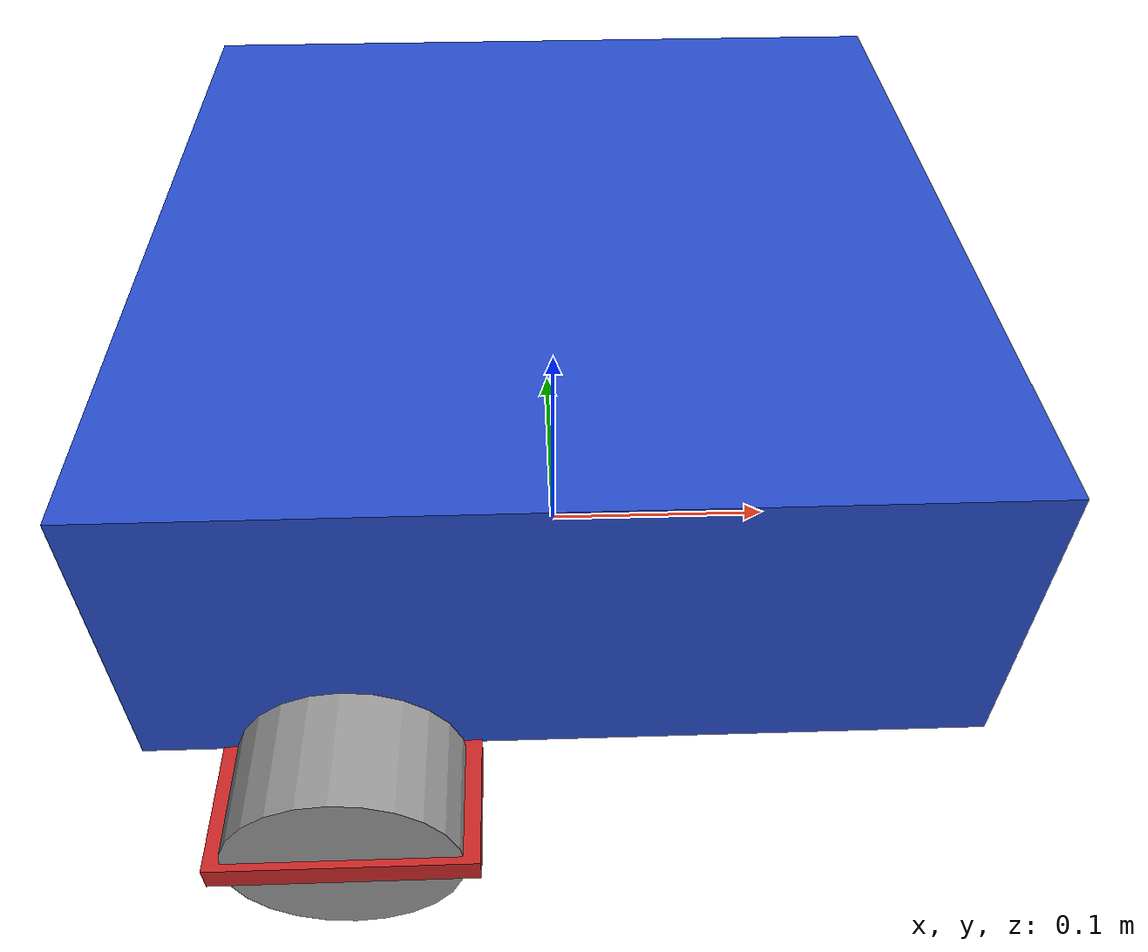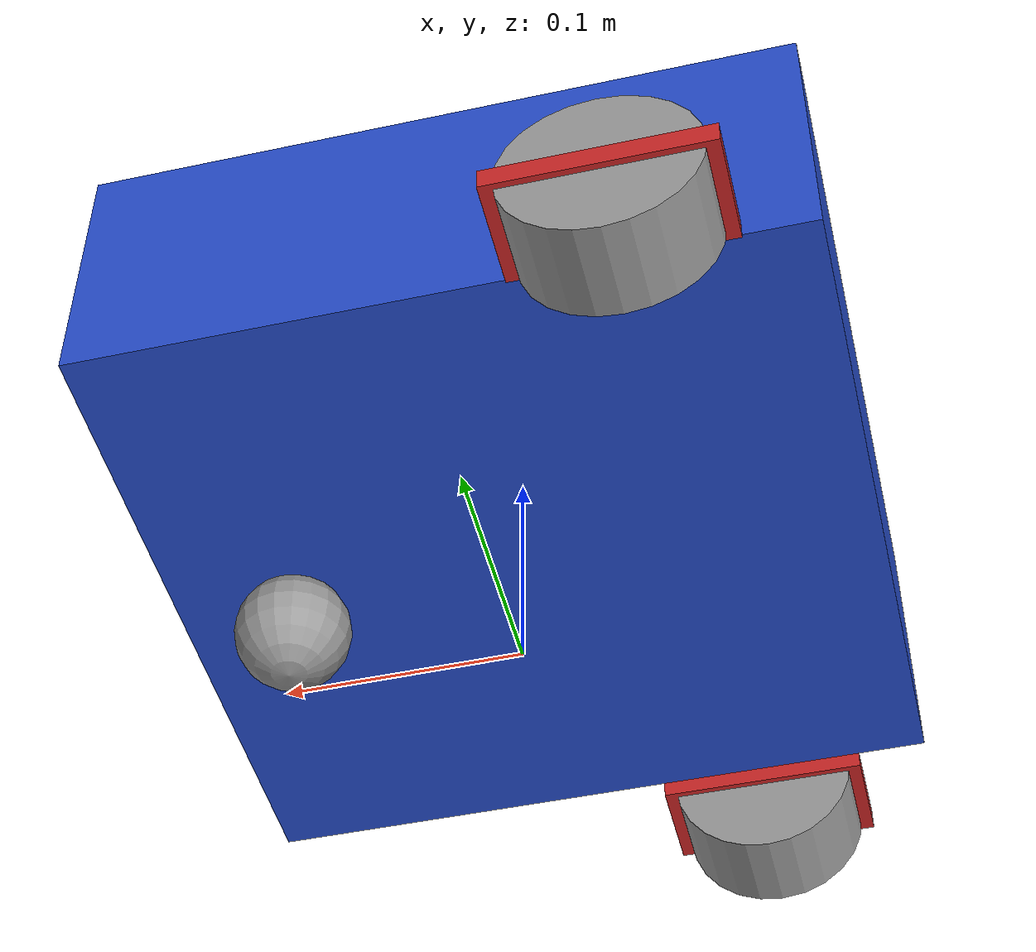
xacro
<?xml version='1.0'?>
<robot name='my_robot' xmlns:xacro='http://www.ros.org/wiki/xacro'>

    <!-- Xacro properties -->
    <xacro:property name='wheel_radius' value='0.04' />
    <xacro:property name='wheel_length' value='0.04' />
    <xacro:property name='base_length' value='0.3' />
    <xacro:property name='base_width' value='0.3' />
    <xacro:property name='base_height' value='0.12' />
    <xacro:property name='wheel_x_offset' value='${base_length/4}' />
    <xacro:property name='wheel_y_offset' value='${base_width/2 + 0.025}' />
    <xacro:property name='wheel_separation' value='.35' />
    <xacro:property name='castor_radius' value='0.05' />
    <xacro:property name='castor_length' value='0.1' />
    <xacro:property name='castor_wheel_radius' value='0.05' />
    <xacro:property name='castor_wheel_length' value='0.02' />
    <xacro:property name='castor_x_offset' value='${base_length/3}' />
    <xacro:property name='castor_y_offset' value='0' />
    <xacro:property name='castor_z_offset' value='${castor_wheel_radius/2 - wheel_radius}' />

    <xacro:macro name='wheel_visual' params='name'>
        <link name='${name}_link'>
            <visual>
                <geometry>
                    <cylinder radius='${wheel_radius}' length='${wheel_length}' />
                </geometry>
                <origin xyz='0 0 0' rpy='1.5708 0 0' />
                <material name='grey'/>
            </visual>
            <!-- Stripe marker across the wheel face so rotation is visible in the viewport -->
            <visual>
                <geometry>
                    <box size='${2*wheel_radius + 0.01} 0.01 ${wheel_length + 0.005}' />
                </geometry>
                <origin xyz='0 0 0' rpy='1.5708 0 0' />
                <material name='red'/>
            </visual>
            <xacro:cylinder_inertia m='1.0' r='${wheel_radius}' h='${wheel_length}'
            o_xyz='0 0 0' o_rpy='1.5708 0 0'/>
            <collision>
                <geometry>
                    <cylinder radius='${wheel_radius}' length='${wheel_length}' />
                </geometry>
                <origin xyz='0 0 0' rpy='1.5708 0 0' />
            </collision>
        </link>
    </xacro:macro>

    <link name='base_link'>
        <visual>
            <geometry>
                <box size='${base_length} ${base_width} ${base_height}' />
            </geometry>
            <origin xyz='0 0 ${base_height/2}' rpy='0 0 0' />

        <material name='blue'/>
        </visual>
        <xacro:box_inertia m='5.0' x='${base_length}' y='${base_width}' z='${base_height}'
        o_xyz='0 0 ${base_height/2}' o_rpy='0 0 0'/>
        <collision>
            <geometry>
                <box size='${base_length} ${base_width} ${base_height}' />
            </geometry>
            <origin xyz='0 0 ${base_height/2}' rpy='0 0 0' />
        </collision>

    </link>

    <link name='base_footprint'>
    </link>
    <xacro:wheel_visual name='right_wheel'/>
    <xacro:wheel_visual name='left_wheel'/>

    <link name='castor_wheel_link'>
        <visual>
            <geometry>
                <sphere radius='${castor_wheel_radius/2}' />
            </geometry>
            <origin xyz='0 0 0' rpy='0 0 0' />
            <material name='grey'/>
        </visual>
        <xacro:sphere_inertia m='0.5' r='${castor_wheel_radius/2}' o_xyz='0 0 0' o_rpy='0 0 0'/>
        <collision>
            <geometry>
                <sphere radius='${castor_wheel_radius/2}' />
            </geometry>
            <origin xyz='0 0 0' rpy='0 0 0' />
        </collision>
    </link>

    <joint name='base_to_right_wheel' type='continuous'>
        <parent link='base_link'/>
        <child link='right_wheel_link'/>
        <origin xyz='-${wheel_x_offset} -${wheel_y_offset} 0' rpy='0 0 0'/>
        <axis xyz='0 1 0'/>
    </joint>
    <joint name='base_to_left_wheel' type='continuous'>
        <parent link='base_link'/>
        <child link='left_wheel_link'/>
        <origin xyz='-${wheel_x_offset} ${wheel_y_offset} 0' rpy='0 0 0'/>
        <axis xyz='0 1 0'/>
    </joint>

    <joint name='base_to_castor_wheel' type='fixed'>
        <parent link='base_link'/>
        <child link='castor_wheel_link'/>
        <origin xyz='${castor_x_offset} ${castor_y_offset} ${castor_z_offset}' rpy='0 0 ${castor_z_offset}'/>
    </joint>

    <joint name='base_joint' type='fixed'>
        <parent link='base_footprint'/>
        <child link='base_link'/>
        <origin xyz='0 0 ${castor_wheel_radius}' rpy='0 0 0'/>
        <axis xyz='0 0 1'/>
    </joint>
</robot>
